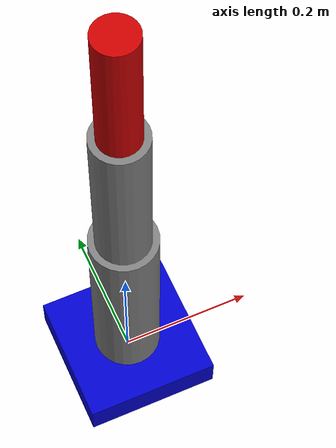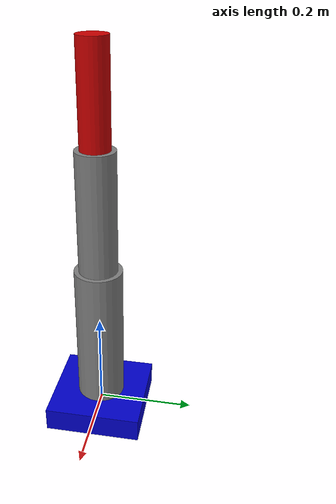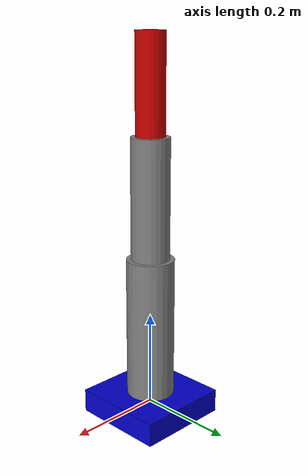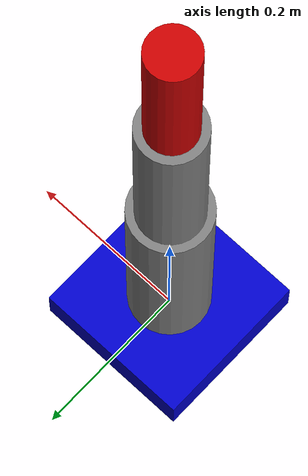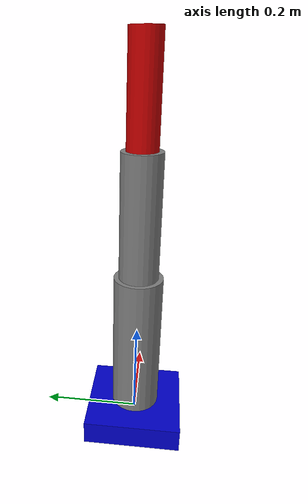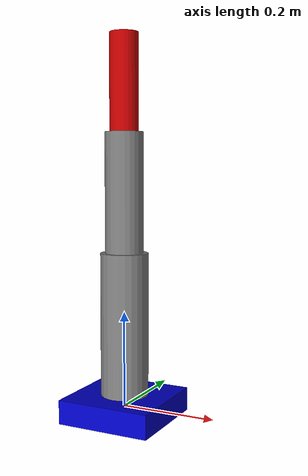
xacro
<?xml version="1.0"?>
<robot name="robot_arm">

  <material name="blue">
    <color rgba="0 0 0.8 1"/>
  </material>
  <material name="grey">
    <color rgba="0.5 0.5 0.5 1"/>
  </material>
  <material name="red">
    <color rgba="0.8 0 0 1"/>
  </material>

  <link name="base_link">
    <visual>
      <geometry>
        <box size="0.2 0.2 0.05"/>
      </geometry>
      <material name="blue"/>
    </visual>
  </link>

  <joint name="joint1" type="revolute">
    <parent link="base_link"/>
    <child link="link1"/>
    <origin xyz="0 0 0.025" rpy="0 0 0"/>
    <axis xyz="0 0 1"/>
    <limit lower="-3.14" upper="3.14" effort="100" velocity="1.0"/>
  </joint>

  <link name="link1">
    <visual>
      <origin xyz="0 0 0.15" rpy="0 0 0"/>
      <geometry>
        <cylinder radius="0.05" length="0.3"/>
      </geometry>
      <material name="grey"/>
    </visual>
  </link>

  <joint name="joint2" type="revolute">
    <parent link="link1"/>
    <child link="link2"/>
    <origin xyz="0 0 0.3" rpy="0 0 0"/>
    <axis xyz="0 1 0"/>
    <limit lower="-1.57" upper="1.57" effort="100" velocity="1.0"/>
  </joint>

  <link name="link2">
    <visual>
      <origin xyz="0 0 0.125" rpy="0 0 0"/>
      <geometry>
        <cylinder radius="0.04" length="0.25"/>
      </geometry>
      <material name="grey"/>
    </visual>
  </link>

  <joint name="joint3" type="revolute">
    <parent link="link2"/>
    <child link="link3"/>
    <origin xyz="0 0 0.25" rpy="0 0 0"/>
    <axis xyz="0 1 0"/>
    <limit lower="-1.57" upper="1.57" effort="100" velocity="1.0"/>
  </joint>

  <link name="link3">
    <visual>
      <origin xyz="0 0 0.1" rpy="0 0 0"/>
      <geometry>
        <cylinder radius="0.03" length="0.2"/>
      </geometry>
      <material name="red"/>
    </visual>
  </link>

</robot>
